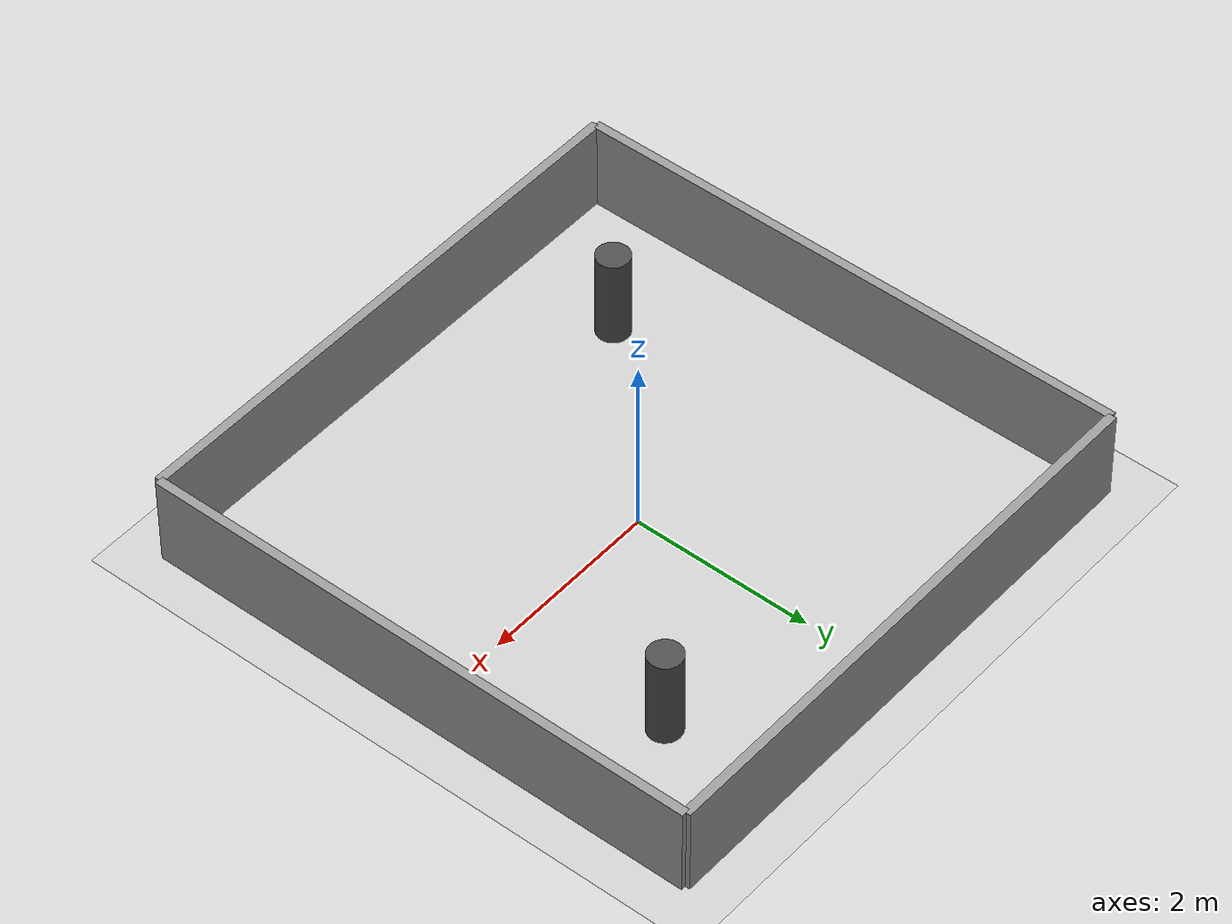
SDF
<?xml version="1.0" ?>
<!-- open_world.world — sparse arena, global density ~0.05. Used as Nav2-favourable baseline. -->
<sdf version="1.6">
  <world name="open_world">
    <physics type="ode">
      <real_time_update_rate>0.0</real_time_update_rate>
      <max_step_size>0.001</max_step_size>
      <real_time_factor>1.0</real_time_factor>
    </physics>
    <include><uri>model://sun</uri></include>
    <include><uri>model://ground_plane</uri></include>

    <!-- Bounding walls 6m x 6m -->
    <model name="wall_north"><static>true</static><pose>0 3.1 0.5 0 0 0</pose>
      <link name="link"><collision name="col"><geometry><box><size>6.2 0.1 1.0</size></box></geometry></collision>
      <visual name="vis"><geometry><box><size>6.2 0.1 1.0</size></box></geometry><material><script><name>Gazebo/Grey</name></script></material></visual></link></model>
    <model name="wall_south"><static>true</static><pose>0 -3.1 0.5 0 0 0</pose>
      <link name="link"><collision name="col"><geometry><box><size>6.2 0.1 1.0</size></box></geometry></collision>
      <visual name="vis"><geometry><box><size>6.2 0.1 1.0</size></box></geometry><material><script><name>Gazebo/Grey</name></script></material></visual></link></model>
    <model name="wall_east"><static>true</static><pose>3.1 0 0.5 0 0 1.5708</pose>
      <link name="link"><collision name="col"><geometry><box><size>6.2 0.1 1.0</size></box></geometry></collision>
      <visual name="vis"><geometry><box><size>6.2 0.1 1.0</size></box></geometry><material><script><name>Gazebo/Grey</name></script></material></visual></link></model>
    <model name="wall_west"><static>true</static><pose>-3.1 0 0.5 0 0 1.5708</pose>
      <link name="link"><collision name="col"><geometry><box><size>6.2 0.1 1.0</size></box></geometry></collision>
      <visual name="vis"><geometry><box><size>6.2 0.1 1.0</size></box></geometry><material><script><name>Gazebo/Grey</name></script></material></visual></link></model>

    <!-- 2 widely-spaced obstacles — density ~0.05 -->
    <model name="obs_0"><static>true</static><pose>1.8 1.8 0.5 0 0 0</pose>
      <link name="link"><collision name="col"><geometry><cylinder><radius>0.18</radius><length>1.0</length></cylinder></geometry></collision>
      <visual name="vis"><geometry><cylinder><radius>0.18</radius><length>1.0</length></cylinder></geometry><material><script><name>Gazebo/DarkGrey</name></script></material></visual></link></model>
    <model name="obs_1"><static>true</static><pose>-1.8 -1.8 0.5 0 0 0</pose>
      <link name="link"><collision name="col"><geometry><cylinder><radius>0.18</radius><length>1.0</length></cylinder></geometry></collision>
      <visual name="vis"><geometry><cylinder><radius>0.18</radius><length>1.0</length></cylinder></geometry><material><script><name>Gazebo/DarkGrey</name></script></material></visual></link></model>

    <gui fullscreen="0"><camera name="user_camera"><pose>0 0 10 0 1.5708 0</pose></camera></gui>
  </world>
</sdf>
